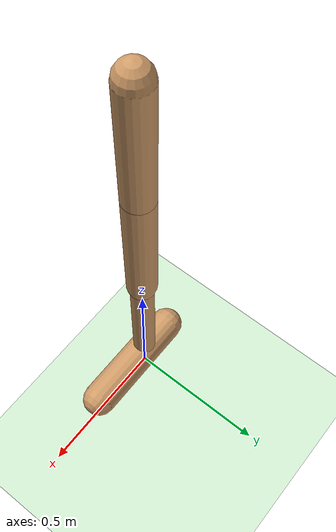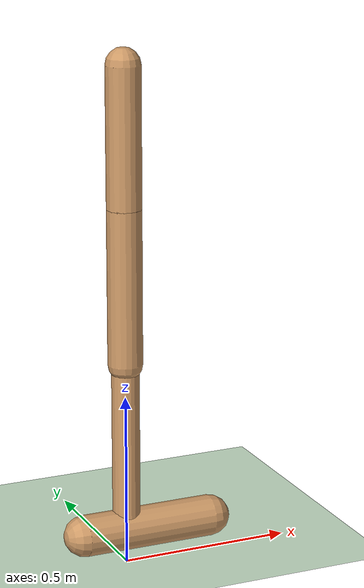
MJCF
<mujoco model="hopper_scene">
  <!-- Scene that includes the hopper model along with lighting and ground details. -->
  <include file="hopper_codesign/assets/hopper.xml"/>

  <statistic center="0.0 0.0 1.0" extent="3.0"/>

  <visual>
    <headlight diffuse="0.6 0.6 0.6" ambient="0.3 0.3 0.3" specular="0 0 0"/>
    <rgba haze="0.15 0.25 0.35 1"/>
    <global elevation="0.0"/>
    <map znear="0.02"/>
  </visual>

  <asset>
    <texture type="skybox" builtin="gradient" rgb1="0.3 0.5 0.7" rgb2="0 0 0" width="512" height="3072"/>
    <texture type="2d" name="groundplane" builtin="checker" mark="edge" rgb1="0.2 0.3 0.4" rgb2="0.1 0.2 0.3"
      markrgb="0.8 0.8 0.8" width="300" height="300"/>
    <material name="groundplane" texture="groundplane" texuniform="true" texrepeat="5 5" reflectance="0.2"/>
  </asset>

  <worldbody>
    <light pos="0 0 3" dir="0 0 -1" directional="false"/>
    <geom name="floor" pos="0 0 0" size="0 0 .125" type="plane" material="groundplane"
      conaffinity="1" condim="3" rgba="0.8 0.9 0.8 1"/>
  </worldbody>

</mujoco>

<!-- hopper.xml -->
<mujoco model="hopper">
  <compiler angle="degree" inertiafromgeom="true"/>
  <default>
    <joint armature="1" damping="1" limited="true"/>
    <motor ctrllimited="true" ctrlrange="-.4 .4"/>
  </default>
  <option integrator="RK4" timestep="0.002"/>
  <visual>
    <map znear="0.02"/>
  </visual>

  <asset>
    <texture builtin="flat" height="1278" mark="cross" markrgb="1 1 1" name="texgeom"
      random="0.01" rgb1="0.8 0.6 0.4" rgb2="0.8 0.6 0.4" type="cube" width="127"/>
    <material name="geom" texture="texgeom" texuniform="true"/>
  </asset>

  <worldbody>
    <light cutoff="100" diffuse="1 1 1" dir="0 0 -1.3" directional="true"
      exponent="1" pos="0 0 1.3" specular=".1 .1 .1"/>

    <body name="torso" pos="0 0 1.25">
      <camera name="track" mode="trackcom" pos="0 -3 1" xyaxes="1 0 0 0 0 1"/>
      <joint armature="0" axis="1 0 0" damping="0" limited="false" name="rootx"
        pos="0 0 0" stiffness="0" type="slide"/>
      <joint armature="0" axis="0 0 1" damping="0" limited="false" name="rootz"
        pos="0 0 0" ref="1.25" stiffness="0" type="slide"/>
      <joint armature="0" axis="0 1 0" damping="0" limited="false" name="rooty"
        pos="0 0 0" stiffness="0" type="hinge"/>
      <!-- torso: local coords, center at 0, goes +0.2 up and -0.2 down -->
      <geom friction="0.9" fromto="0 0 0.2 0 0 -0.2" name="torso_geom"
        size="0.05" type="capsule" material="geom"/>

      <body name="thigh" pos="0 0 -0.2">
        <joint axis="0 -1 0" name="thigh_joint" pos="0 0 0" range="-150 0" type="hinge"/>
        <!-- thigh: 0.45m long, goes from 0 down to -0.45 in local coords -->
        <geom friction="0.9" fromto="0 0 0 0 0 -0.45" name="thigh_geom"
          size="0.05" type="capsule" material="geom"/>

        <body name="leg" pos="0 0 -0.45">
          <joint axis="0 -1 0" name="leg_joint" pos="0 0 0" range="-150 0" type="hinge"/>
          <!-- leg: 0.5m long, goes from 0 down to -0.5 in local coords -->
          <geom friction="0.9" fromto="0 0 0 0 0 -0.5" name="leg_geom"
            size="0.04" type="capsule" material="geom"/>

          <body name="foot" pos="0 0 -0.5">
            <joint axis="0 -1 0" name="foot_joint" pos="0 0 0" range="-45 45" type="hinge"/>
            <!-- foot: horizontal capsule -->
            <geom friction="2.0" fromto="-0.13 0 0 0.26 0 0" name="foot_geom"
              size="0.06" type="capsule" material="geom"/>
          </body>
        </body>
      </body>
    </body>
  </worldbody>

  <actuator>
    <motor ctrllimited="true" ctrlrange="-1.0 1.0" gear="200.0" joint="thigh_joint"/>
    <motor ctrllimited="true" ctrlrange="-1.0 1.0" gear="200.0" joint="leg_joint"/>
    <motor ctrllimited="true" ctrlrange="-1.0 1.0" gear="200.0" joint="foot_joint"/>
  </actuator>

</mujoco>
